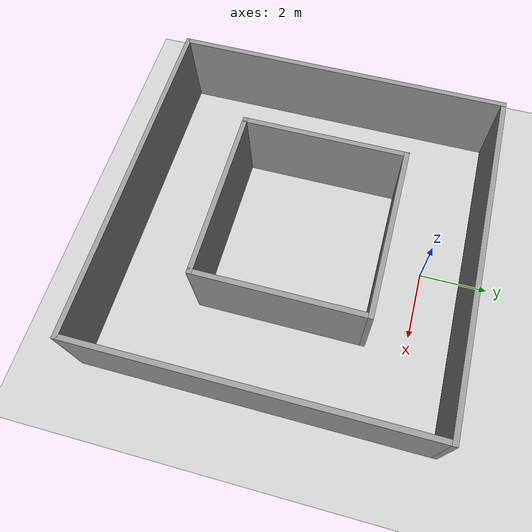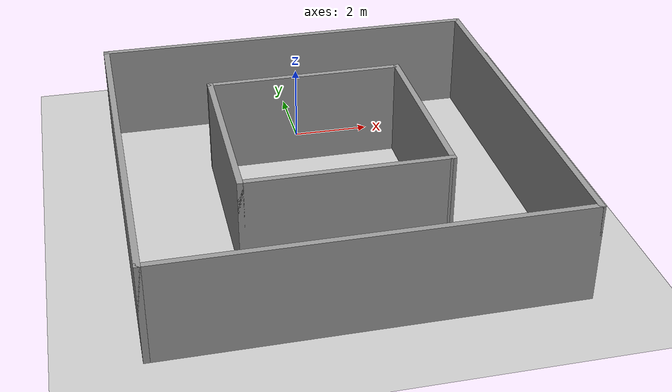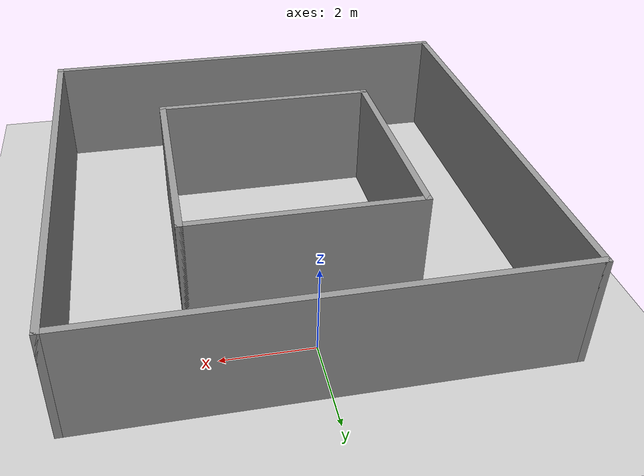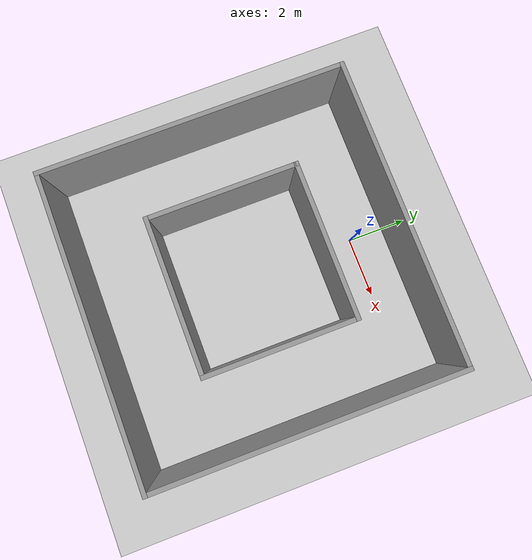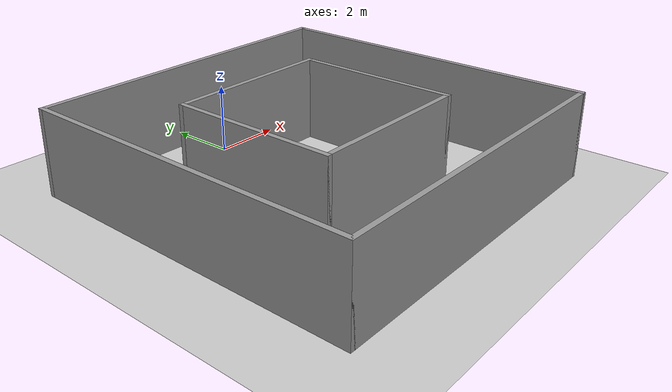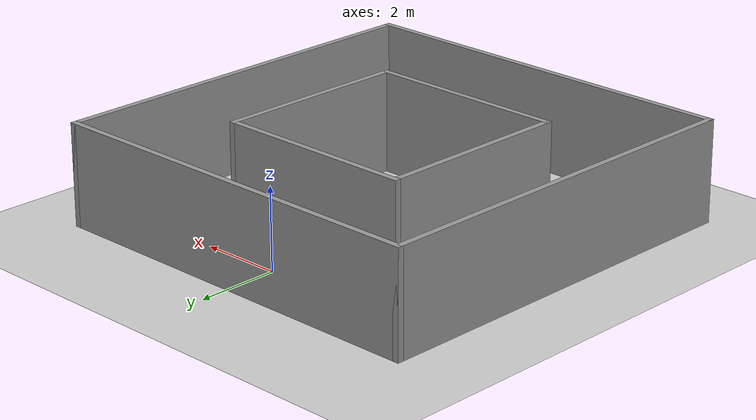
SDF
<sdf version="1.7">
 <world name="default">
  <light name="sun" type="directional">
   <pose>0 0 10 0 -0 0</pose>
   <diffuse>0.8 0.8 0.8 1</diffuse>
   <specular>0.2 0.2 0.2 1</specular>
   <attenuation>
    <range>1000</range>
    <constant>0.9</constant>
    <linear>0.01</linear>
    <quadratic>0.001</quadratic>
   </attenuation>
   <direction>-0.5 0.1 -0.9</direction>
   <spot><inner_angle>0</inner_angle><outer_angle>0</outer_angle><falloff>0</falloff></spot>
  </light>
  <model name="ground_plane">
   <static>1</static>
   <link name="link">
    <collision name="collision">
     <geometry><plane><normal>0 0 1</normal><size>100 100</size></plane></geometry>
     <surface><friction><ode><mu>100</mu><mu2>50</mu2></ode></friction></surface>
    </collision>
    <visual name="visual">
     <cast_shadows>0</cast_shadows>
     <geometry><plane><normal>0 0 1</normal><size>100 100</size></plane></geometry>
     <material>
      <script><uri>file://media/materials/scripts/gazebo.material</uri><name>Gazebo/Grey</name></script>
     </material>
    </visual>
   </link>
  </model>
  <gravity>0 0 -9.8</gravity>
  <magnetic_field>6e-06 2.3e-05 -4.2e-05</magnetic_field>
  <atmosphere type="adiabatic"/>
  <physics type="ode">
   <max_step_size>0.001</max_step_size>
   <real_time_factor>1</real_time_factor>
   <real_time_update_rate>1000</real_time_update_rate>
  </physics>
  <scene><ambient>0.4 0.4 0.4 1</ambient><background>0.7 0.7 0.7 1</background><shadows>1</shadows></scene>
  <audio><device>default</device></audio>
  <spherical_coordinates>
   <surface_model>EARTH_WGS84</surface_model>
   <latitude_deg>0</latitude_deg>
   <longitude_deg>0</longitude_deg>
   <elevation>0</elevation>
   <heading_deg>0</heading_deg>
  </spherical_coordinates>
  <model name="loop_corridor">
   <pose>0 -3.75 0 0 -0 0</pose>
   <link name="Wall_0">
    <collision name="Wall_0_Collision">
     <geometry><box><size>10.15 0.15 2.5</size></box></geometry>
     <pose>0 0 1.25 0 -0 0</pose>
    </collision>
    <visual name="Wall_0_Visual">
     <pose>0 0 1.25 0 -0 0</pose>
     <geometry><box><size>10.15 0.15 2.5</size></box></geometry>
     <material>
      <script><uri>file://media/materials/scripts/gazebo.material</uri><name>Gazebo/Grey</name></script>
      <ambient>1 1 1 1</ambient>
     </material>
     <meta><layer>0</layer></meta>
    </visual>
    <pose>0 5 0 0 -0 0</pose>
   </link>
   <link name="Wall_11">
    <collision name="Wall_11_Collision">
     <geometry><box><size>5 0.15 2.5</size></box></geometry>
     <pose>0 0 1.25 0 -0 0</pose>
    </collision>
    <visual name="Wall_11_Visual">
     <pose>0 0 1.25 0 -0 0</pose>
     <geometry><box><size>5 0.15 2.5</size></box></geometry>
     <material>
      <script><uri>file://media/materials/scripts/gazebo.material</uri><name>Gazebo/Grey</name></script>
      <ambient>1 1 1 1</ambient>
     </material>
     <meta><layer>0</layer></meta>
    </visual>
    <pose>-2.5 0.075 0 0 -0 -1.5708</pose>
   </link>
   <link name="Wall_14">
    <collision name="Wall_14_Collision">
     <geometry><box><size>5.15 0.15 2.5</size></box></geometry>
     <pose>0 0 1.25 0 -0 0</pose>
    </collision>
    <visual name="Wall_14_Visual">
     <pose>0 0 1.25 0 -0 0</pose>
     <geometry><box><size>5.15 0.15 2.5</size></box></geometry>
     <material>
      <script><uri>file://media/materials/scripts/gazebo.material</uri><name>Gazebo/Grey</name></script>
      <ambient>1 1 1 1</ambient>
     </material>
     <meta><layer>0</layer></meta>
    </visual>
    <pose>-0 -2.35 0 0 -0 0</pose>
   </link>
   <link name="Wall_16">
    <collision name="Wall_16_Collision">
     <geometry><box><size>5 0.15 2.5</size></box></geometry>
     <pose>0 0 1.25 0 -0 0</pose>
    </collision>
    <visual name="Wall_16_Visual">
     <pose>0 0 1.25 0 -0 0</pose>
     <geometry><box><size>5 0.15 2.5</size></box></geometry>
     <material>
      <script><uri>file://media/materials/scripts/gazebo.material</uri><name>Gazebo/Grey</name></script>
      <ambient>1 1 1 1</ambient>
     </material>
     <meta><layer>0</layer></meta>
    </visual>
    <pose>2.5 0.075 0 0 -0 1.5708</pose>
   </link>
   <link name="Wall_3">
    <collision name="Wall_3_Collision">
     <geometry><box><size>10.15 0.15 2.5</size></box></geometry>
     <pose>0 0 1.25 0 -0 0</pose>
    </collision>
    <visual name="Wall_3_Visual">
     <pose>0 0 1.25 0 -0 0</pose>
     <geometry><box><size>10.15 0.15 2.5</size></box></geometry>
     <material>
      <script><uri>file://media/materials/scripts/gazebo.material</uri><name>Gazebo/Grey</name></script>
      <ambient>1 1 1 1</ambient>
     </material>
     <meta><layer>0</layer></meta>
    </visual>
    <pose>-5 0 0 0 -0 -1.5708</pose>
   </link>
   <link name="Wall_5">
    <collision name="Wall_5_Collision">
     <geometry><box><size>10.15 0.15 2.5</size></box></geometry>
     <pose>0 0 1.25 0 -0 0</pose>
    </collision>
    <visual name="Wall_5_Visual">
     <pose>0 0 1.25 0 -0 0</pose>
     <geometry><box><size>10.15 0.15 2.5</size></box></geometry>
     <material>
      <script><uri>file://media/materials/scripts/gazebo.material</uri><name>Gazebo/Grey</name></script>
      <ambient>1 1 1 1</ambient>
     </material>
     <meta><layer>0</layer></meta>
    </visual>
    <pose>0 -5 0 0 -0 0</pose>
   </link>
   <link name="Wall_7">
    <collision name="Wall_7_Collision">
     <geometry><box><size>10.15 0.15 2.5</size></box></geometry>
     <pose>0 0 1.25 0 -0 0</pose>
    </collision>
    <visual name="Wall_7_Visual">
     <pose>0 0 1.25 0 -0 0</pose>
     <geometry><box><size>10.15 0.15 2.5</size></box></geometry>
     <material>
      <script><uri>file://media/materials/scripts/gazebo.material</uri><name>Gazebo/Grey</name></script>
      <ambient>1 1 1 1</ambient>
     </material>
     <meta><layer>0</layer></meta>
    </visual>
    <pose>5 0 0 0 -0 1.5708</pose>
   </link>
   <link name="Wall_9">
    <collision name="Wall_9_Collision">
     <geometry><box><size>5.15 0.15 2.5</size></box></geometry>
     <pose>0 0 1.25 0 -0 0</pose>
    </collision>
    <visual name="Wall_9_Visual">
     <pose>0 0 1.25 0 -0 0</pose>
     <geometry><box><size>5.15 0.15 2.5</size></box></geometry>
     <material>
      <script><uri>file://media/materials/scripts/gazebo.material</uri><name>Gazebo/Grey</name></script>
      <ambient>1 1 1 1</ambient>
     </material>
     <meta><layer>0</layer></meta>
    </visual>
    <pose>0 2.5 0 0 -0 0</pose>
   </link>
   <static>1</static>
  </model>
 </world>
</sdf>
